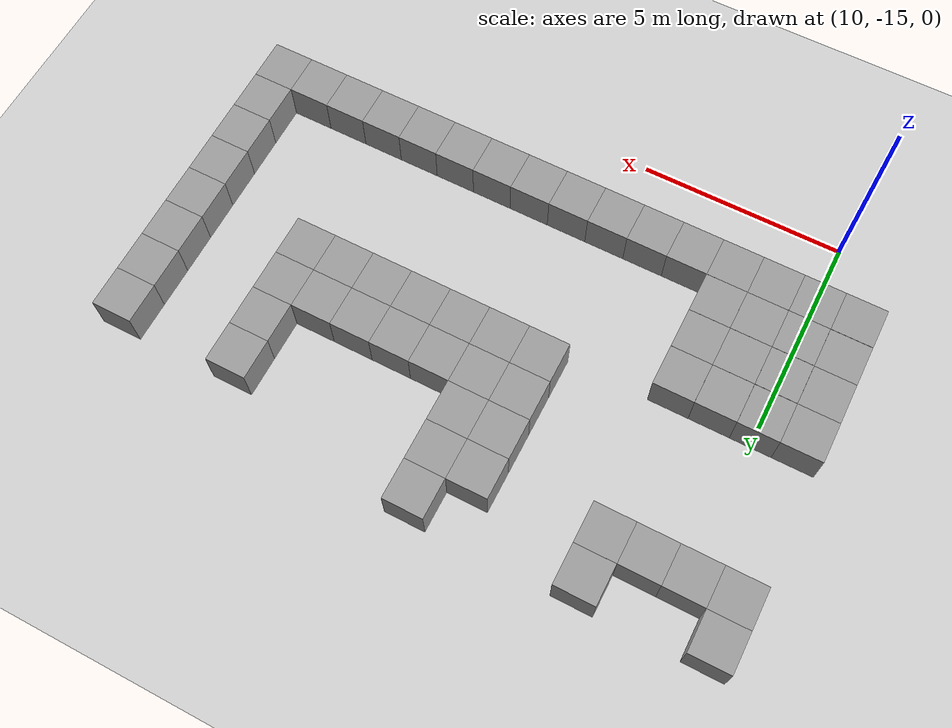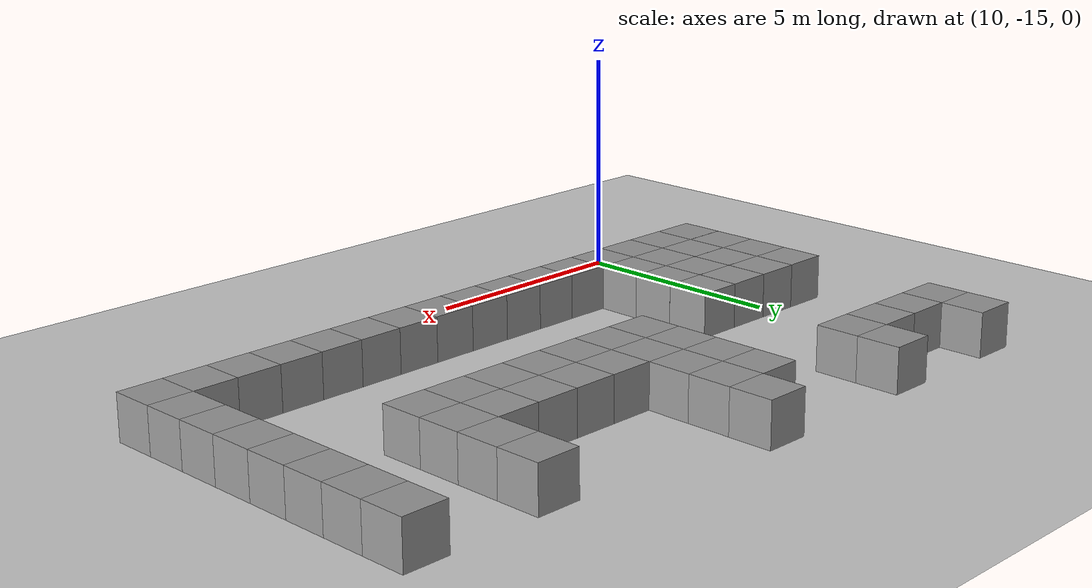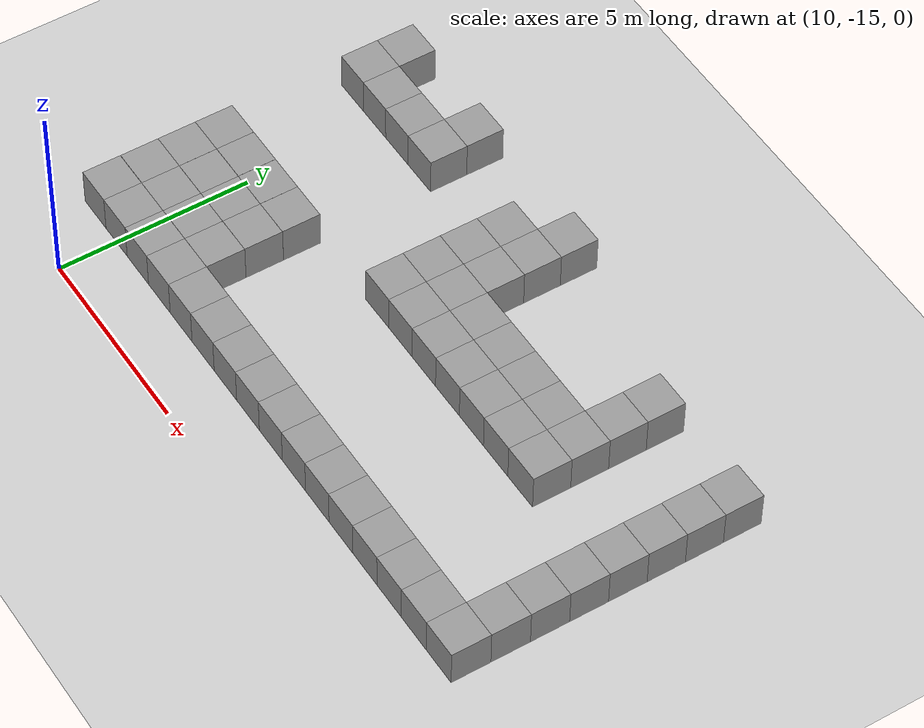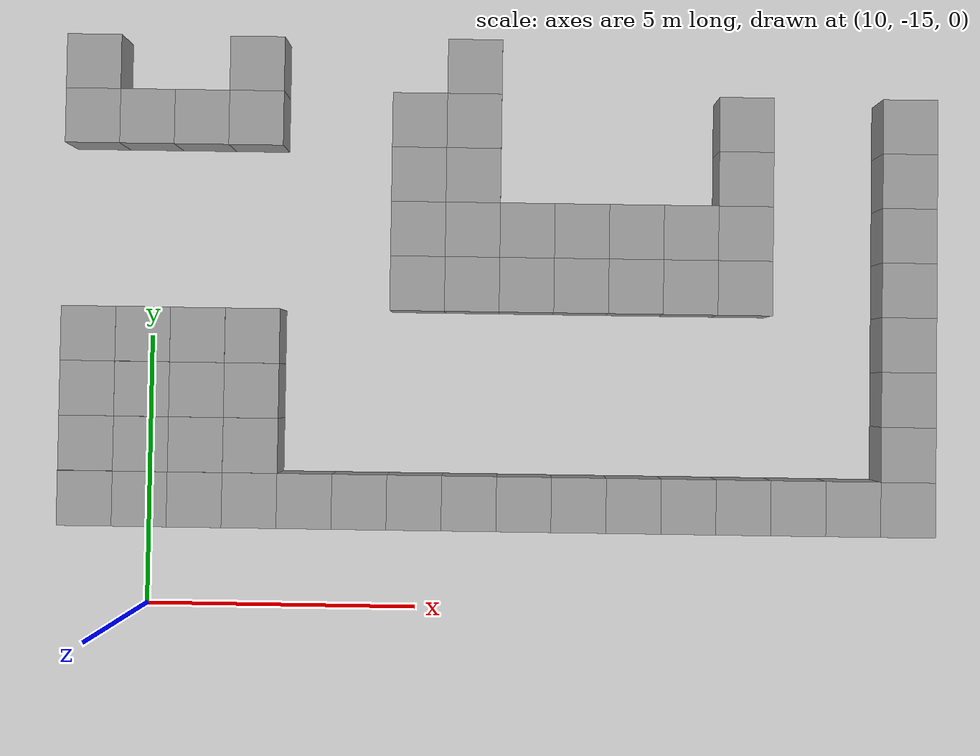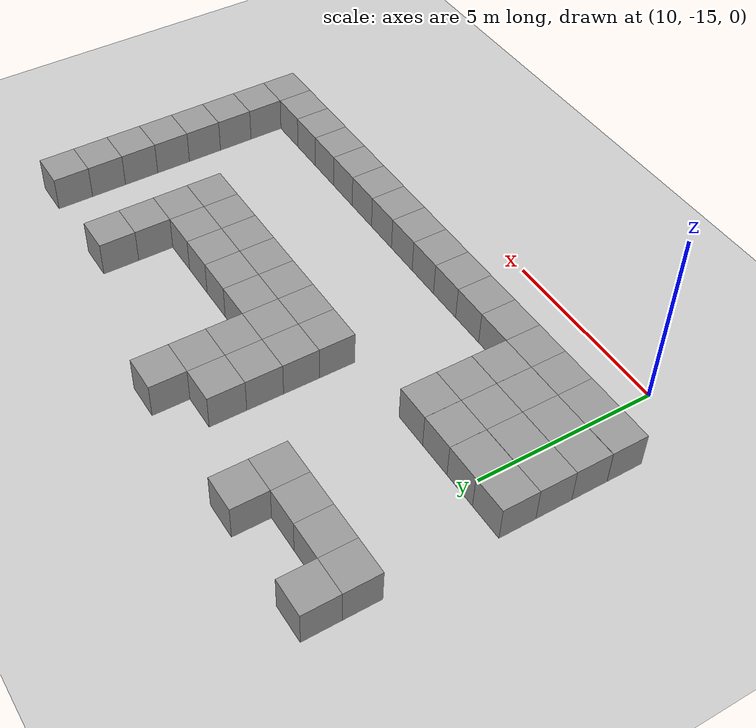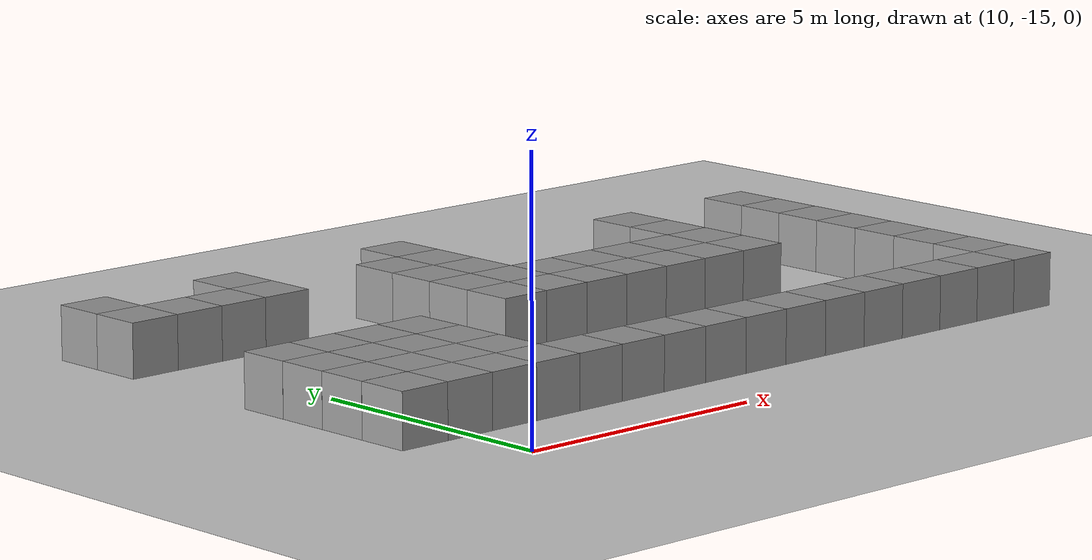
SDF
<sdf version="1.4">
 <world name="default">
  <model name="ground_plane">
   <static>true</static>
   <link name="link">
    <collision name="collision">
     <geometry><plane><normal>0 0 1</normal><size>100 100</size></plane></geometry>
     <surface><friction><ode><mu>100</mu><mu2>50</mu2></ode></friction></surface>
    </collision>
    <visual name="visual">
     <cast_shadows>0</cast_shadows>
     <geometry><plane><normal>0 0 1</normal><size>100 100</size></plane></geometry>
     <material>
      <script><uri>file://media/materials/scripts/gazebo.material</uri><name>Gazebo/Grey</name></script>
     </material>
    </visual>
    <velocity_decay><linear>0</linear><angular>0</angular></velocity_decay>
   </link>
  </model>
  <model name="unit_box_208">
   <pose>24 -6 0.5 0 0 -2e-06</pose>
   <static>true</static>
   <link name="link">
    <inertial>
     <mass>1</mass>
     <inertia><ixx>1</ixx><ixy>0</ixy><ixz>0</ixz><iyy>1</iyy><iyz>0</iyz><izz>1</izz></inertia>
    </inertial>
    <collision name="collision"><geometry><box><size>1 1 1</size></box></geometry></collision>
    <visual name="visual">
     <geometry><box><size>1 1 1</size></box></geometry>
     <material>
      <script><uri>file://media/materials/scripts/gazebo.material</uri><name>Gazebo/Grey</name></script>
     </material>
    </visual>
    <velocity_decay><linear>0</linear><angular>0</angular></velocity_decay>
   </link>
   <static>true</static>
  </model>
  <model name="unit_box_215">
   <pose>24 -7 0.5 0 0 -2e-06</pose>
   <static>true</static>
   <link name="link">
    <inertial>
     <mass>1</mass>
     <inertia><ixx>1</ixx><ixy>0</ixy><ixz>0</ixz><iyy>1</iyy><iyz>0</iyz><izz>1</izz></inertia>
    </inertial>
    <collision name="collision"><geometry><box><size>1 1 1</size></box></geometry></collision>
    <visual name="visual">
     <geometry><box><size>1 1 1</size></box></geometry>
     <material>
      <script><uri>file://media/materials/scripts/gazebo.material</uri><name>Gazebo/Grey</name></script>
     </material>
    </visual>
    <velocity_decay><linear>0</linear><angular>0</angular></velocity_decay>
   </link>
   <static>true</static>
  </model>
  <model name="unit_box_216">
   <pose>24 -8 0.5 0 0 -3e-06</pose>
   <static>true</static>
   <link name="link">
    <inertial>
     <mass>1</mass>
     <inertia><ixx>1</ixx><ixy>0</ixy><ixz>0</ixz><iyy>1</iyy><iyz>0</iyz><izz>1</izz></inertia>
    </inertial>
    <collision name="collision"><geometry><box><size>1 1 1</size></box></geometry></collision>
    <visual name="visual">
     <geometry><box><size>1 1 1</size></box></geometry>
     <material>
      <script><uri>file://media/materials/scripts/gazebo.material</uri><name>Gazebo/Grey</name></script>
     </material>
    </visual>
    <velocity_decay><linear>0</linear><angular>0</angular></velocity_decay>
   </link>
   <static>true</static>
  </model>
  <model name="unit_box_264">
   <pose>9 -13 0.5 0 0 -1.1e-05</pose>
   <static>true</static>
   <link name="link">
    <inertial>
     <mass>1</mass>
     <inertia><ixx>1</ixx><ixy>0</ixy><ixz>0</ixz><iyy>1</iyy><iyz>0</iyz><izz>1</izz></inertia>
    </inertial>
    <collision name="collision"><geometry><box><size>1 1 1</size></box></geometry></collision>
    <visual name="visual">
     <geometry><box><size>1 1 1</size></box></geometry>
     <material>
      <script><uri>file://media/materials/scripts/gazebo.material</uri><name>Gazebo/Grey</name></script>
     </material>
    </visual>
    <velocity_decay><linear>0</linear><angular>0</angular></velocity_decay>
   </link>
   <static>true</static>
  </model>
  <model name="unit_box_265">
   <pose>10 -13 0.500001 2e-06 -0 -1.1e-05</pose>
   <static>true</static>
   <link name="link">
    <inertial>
     <mass>1</mass>
     <inertia><ixx>1</ixx><ixy>0</ixy><ixz>0</ixz><iyy>1</iyy><iyz>0</iyz><izz>1</izz></inertia>
    </inertial>
    <collision name="collision"><geometry><box><size>1 1 1</size></box></geometry></collision>
    <visual name="visual">
     <geometry><box><size>1 1 1</size></box></geometry>
     <material>
      <script><uri>file://media/materials/scripts/gazebo.material</uri><name>Gazebo/Grey</name></script>
     </material>
    </visual>
    <velocity_decay><linear>0</linear><angular>0</angular></velocity_decay>
   </link>
   <static>true</static>
  </model>
  <model name="unit_box_266">
   <pose>11 -13 0.499992 1e-06 3.23117e-27 -8e-06</pose>
   <static>true</static>
   <link name="link">
    <inertial>
     <mass>1</mass>
     <inertia><ixx>1</ixx><ixy>0</ixy><ixz>0</ixz><iyy>1</iyy><iyz>0</iyz><izz>1</izz></inertia>
    </inertial>
    <collision name="collision"><geometry><box><size>1 1 1</size></box></geometry></collision>
    <visual name="visual">
     <geometry><box><size>1 1 1</size></box></geometry>
     <material>
      <script><uri>file://media/materials/scripts/gazebo.material</uri><name>Gazebo/Grey</name></script>
     </material>
    </visual>
    <velocity_decay><linear>0</linear><angular>0</angular></velocity_decay>
   </link>
   <static>true</static>
  </model>
  <model name="unit_box_267">
   <pose>12 -13 0.5 0 0 -8e-06</pose>
   <static>true</static>
   <link name="link">
    <inertial>
     <mass>1</mass>
     <inertia><ixx>1</ixx><ixy>0</ixy><ixz>0</ixz><iyy>1</iyy><iyz>0</iyz><izz>1</izz></inertia>
    </inertial>
    <collision name="collision"><geometry><box><size>1 1 1</size></box></geometry></collision>
    <visual name="visual">
     <geometry><box><size>1 1 1</size></box></geometry>
     <material>
      <script><uri>file://media/materials/scripts/gazebo.material</uri><name>Gazebo/Grey</name></script>
     </material>
    </visual>
    <velocity_decay><linear>0</linear><angular>0</angular></velocity_decay>
   </link>
   <static>true</static>
  </model>
  <model name="unit_box_268">
   <pose>13 -13 0.500001 1e-06 8.07794e-28 -7e-06</pose>
   <static>true</static>
   <link name="link">
    <inertial>
     <mass>1</mass>
     <inertia><ixx>1</ixx><ixy>0</ixy><ixz>0</ixz><iyy>1</iyy><iyz>0</iyz><izz>1</izz></inertia>
    </inertial>
    <collision name="collision"><geometry><box><size>1 1 1</size></box></geometry></collision>
    <visual name="visual">
     <geometry><box><size>1 1 1</size></box></geometry>
     <material>
      <script><uri>file://media/materials/scripts/gazebo.material</uri><name>Gazebo/Grey</name></script>
     </material>
    </visual>
    <velocity_decay><linear>0</linear><angular>0</angular></velocity_decay>
   </link>
   <static>true</static>
  </model>
  <model name="unit_box_269">
   <pose>14 -13 0.5 0 0 -1e-05</pose>
   <static>true</static>
   <link name="link">
    <inertial>
     <mass>1</mass>
     <inertia><ixx>1</ixx><ixy>0</ixy><ixz>0</ixz><iyy>1</iyy><iyz>0</iyz><izz>1</izz></inertia>
    </inertial>
    <collision name="collision"><geometry><box><size>1 1 1</size></box></geometry></collision>
    <visual name="visual">
     <geometry><box><size>1 1 1</size></box></geometry>
     <material>
      <script><uri>file://media/materials/scripts/gazebo.material</uri><name>Gazebo/Grey</name></script>
     </material>
    </visual>
    <velocity_decay><linear>0</linear><angular>0</angular></velocity_decay>
   </link>
   <static>true</static>
  </model>
  <model name="unit_box_274">
   <pose>24 -9 0.5 0 0 -6e-06</pose>
   <static>true</static>
   <link name="link">
    <inertial>
     <mass>1</mass>
     <inertia><ixx>1</ixx><ixy>0</ixy><ixz>0</ixz><iyy>1</iyy><iyz>0</iyz><izz>1</izz></inertia>
    </inertial>
    <collision name="collision"><geometry><box><size>1 1 1</size></box></geometry></collision>
    <visual name="visual">
     <geometry><box><size>1 1 1</size></box></geometry>
     <material>
      <script><uri>file://media/materials/scripts/gazebo.material</uri><name>Gazebo/Grey</name></script>
     </material>
    </visual>
    <velocity_decay><linear>0</linear><angular>0</angular></velocity_decay>
   </link>
   <static>true</static>
  </model>
  <model name="unit_box_275">
   <pose>24 -10 0.5 0 0 -6e-06</pose>
   <static>true</static>
   <link name="link">
    <inertial>
     <mass>1</mass>
     <inertia><ixx>1</ixx><ixy>0</ixy><ixz>0</ixz><iyy>1</iyy><iyz>0</iyz><izz>1</izz></inertia>
    </inertial>
    <collision name="collision"><geometry><box><size>1 1 1</size></box></geometry></collision>
    <visual name="visual">
     <geometry><box><size>1 1 1</size></box></geometry>
     <material>
      <script><uri>file://media/materials/scripts/gazebo.material</uri><name>Gazebo/Grey</name></script>
     </material>
    </visual>
    <velocity_decay><linear>0</linear><angular>0</angular></velocity_decay>
   </link>
   <static>true</static>
  </model>
  <model name="unit_box_276">
   <pose>24 -11 0.5 0 0 -4e-06</pose>
   <static>true</static>
   <link name="link">
    <inertial>
     <mass>1</mass>
     <inertia><ixx>1</ixx><ixy>0</ixy><ixz>0</ixz><iyy>1</iyy><iyz>0</iyz><izz>1</izz></inertia>
    </inertial>
    <collision name="collision"><geometry><box><size>1 1 1</size></box></geometry></collision>
    <visual name="visual">
     <geometry><box><size>1 1 1</size></box></geometry>
     <material>
      <script><uri>file://media/materials/scripts/gazebo.material</uri><name>Gazebo/Grey</name></script>
     </material>
    </visual>
    <velocity_decay><linear>0</linear><angular>0</angular></velocity_decay>
   </link>
   <static>true</static>
  </model>
  <model name="unit_box_277">
   <pose>24 -12 0.5 0 0 -4e-06</pose>
   <static>true</static>
   <link name="link">
    <inertial>
     <mass>1</mass>
     <inertia><ixx>1</ixx><ixy>0</ixy><ixz>0</ixz><iyy>1</iyy><iyz>0</iyz><izz>1</izz></inertia>
    </inertial>
    <collision name="collision"><geometry><box><size>1 1 1</size></box></geometry></collision>
    <visual name="visual">
     <geometry><box><size>1 1 1</size></box></geometry>
     <material>
      <script><uri>file://media/materials/scripts/gazebo.material</uri><name>Gazebo/Grey</name></script>
     </material>
    </visual>
    <velocity_decay><linear>0</linear><angular>0</angular></velocity_decay>
   </link>
   <static>true</static>
  </model>
  <model name="unit_box_278">
   <pose>15 -13 0.499998 -1e-06 5e-06 -1e-05</pose>
   <static>true</static>
   <link name="link">
    <inertial>
     <mass>1</mass>
     <inertia><ixx>1</ixx><ixy>0</ixy><ixz>0</ixz><iyy>1</iyy><iyz>0</iyz><izz>1</izz></inertia>
    </inertial>
    <collision name="collision"><geometry><box><size>1 1 1</size></box></geometry></collision>
    <visual name="visual">
     <geometry><box><size>1 1 1</size></box></geometry>
     <material>
      <script><uri>file://media/materials/scripts/gazebo.material</uri><name>Gazebo/Grey</name></script>
     </material>
    </visual>
    <velocity_decay><linear>0</linear><angular>0</angular></velocity_decay>
   </link>
   <static>true</static>
  </model>
  <model name="unit_box_279">
   <pose>16 -13 0.49999 0 0 -1e-05</pose>
   <static>true</static>
   <link name="link">
    <inertial>
     <mass>1</mass>
     <inertia><ixx>1</ixx><ixy>0</ixy><ixz>0</ixz><iyy>1</iyy><iyz>0</iyz><izz>1</izz></inertia>
    </inertial>
    <collision name="collision"><geometry><box><size>1 1 1</size></box></geometry></collision>
    <visual name="visual">
     <geometry><box><size>1 1 1</size></box></geometry>
     <material>
      <script><uri>file://media/materials/scripts/gazebo.material</uri><name>Gazebo/Grey</name></script>
     </material>
    </visual>
    <velocity_decay><linear>0</linear><angular>0</angular></velocity_decay>
   </link>
   <static>true</static>
  </model>
  <model name="unit_box_280">
   <pose>17 -13 0.5 -1e-06 1.61559e-27 -1.1e-05</pose>
   <static>true</static>
   <link name="link">
    <inertial>
     <mass>1</mass>
     <inertia><ixx>1</ixx><ixy>0</ixy><ixz>0</ixz><iyy>1</iyy><iyz>0</iyz><izz>1</izz></inertia>
    </inertial>
    <collision name="collision"><geometry><box><size>1 1 1</size></box></geometry></collision>
    <visual name="visual">
     <geometry><box><size>1 1 1</size></box></geometry>
     <material>
      <script><uri>file://media/materials/scripts/gazebo.material</uri><name>Gazebo/Grey</name></script>
     </material>
    </visual>
    <velocity_decay><linear>0</linear><angular>0</angular></velocity_decay>
   </link>
   <static>true</static>
  </model>
  <model name="unit_box_281">
   <pose>18 -13 0.5 0 0 -1.1e-05</pose>
   <static>true</static>
   <link name="link">
    <inertial>
     <mass>1</mass>
     <inertia><ixx>1</ixx><ixy>0</ixy><ixz>0</ixz><iyy>1</iyy><iyz>0</iyz><izz>1</izz></inertia>
    </inertial>
    <collision name="collision"><geometry><box><size>1 1 1</size></box></geometry></collision>
    <visual name="visual">
     <geometry><box><size>1 1 1</size></box></geometry>
     <material>
      <script><uri>file://media/materials/scripts/gazebo.material</uri><name>Gazebo/Grey</name></script>
     </material>
    </visual>
    <velocity_decay><linear>0</linear><angular>0</angular></velocity_decay>
   </link>
   <static>true</static>
  </model>
  <model name="unit_box_282">
   <pose>19 -13 0.5 0 0 -9e-06</pose>
   <static>true</static>
   <link name="link">
    <inertial>
     <mass>1</mass>
     <inertia><ixx>1</ixx><ixy>0</ixy><ixz>0</ixz><iyy>1</iyy><iyz>0</iyz><izz>1</izz></inertia>
    </inertial>
    <collision name="collision"><geometry><box><size>1 1 1</size></box></geometry></collision>
    <visual name="visual">
     <geometry><box><size>1 1 1</size></box></geometry>
     <material>
      <script><uri>file://media/materials/scripts/gazebo.material</uri><name>Gazebo/Grey</name></script>
     </material>
    </visual>
    <velocity_decay><linear>0</linear><angular>0</angular></velocity_decay>
   </link>
   <static>true</static>
  </model>
  <model name="unit_box_283">
   <pose>20 -13 0.5 0 0 -9e-06</pose>
   <static>true</static>
   <link name="link">
    <inertial>
     <mass>1</mass>
     <inertia><ixx>1</ixx><ixy>0</ixy><ixz>0</ixz><iyy>1</iyy><iyz>0</iyz><izz>1</izz></inertia>
    </inertial>
    <collision name="collision"><geometry><box><size>1 1 1</size></box></geometry></collision>
    <visual name="visual">
     <geometry><box><size>1 1 1</size></box></geometry>
     <material>
      <script><uri>file://media/materials/scripts/gazebo.material</uri><name>Gazebo/Grey</name></script>
     </material>
    </visual>
    <velocity_decay><linear>0</linear><angular>0</angular></velocity_decay>
   </link>
   <static>true</static>
  </model>
  <model name="unit_box_284">
   <pose>21 -13 0.5 0 0 -6e-06</pose>
   <static>true</static>
   <link name="link">
    <inertial>
     <mass>1</mass>
     <inertia><ixx>1</ixx><ixy>0</ixy><ixz>0</ixz><iyy>1</iyy><iyz>0</iyz><izz>1</izz></inertia>
    </inertial>
    <collision name="collision"><geometry><box><size>1 1 1</size></box></geometry></collision>
    <visual name="visual">
     <geometry><box><size>1 1 1</size></box></geometry>
     <material>
      <script><uri>file://media/materials/scripts/gazebo.material</uri><name>Gazebo/Grey</name></script>
     </material>
    </visual>
    <velocity_decay><linear>0</linear><angular>0</angular></velocity_decay>
   </link>
   <static>true</static>
  </model>
  <model name="unit_box_285">
   <pose>22 -13 0.5 1e-06 -0 -6e-06</pose>
   <static>true</static>
   <link name="link">
    <inertial>
     <mass>1</mass>
     <inertia><ixx>1</ixx><ixy>0</ixy><ixz>0</ixz><iyy>1</iyy><iyz>0</iyz><izz>1</izz></inertia>
    </inertial>
    <collision name="collision"><geometry><box><size>1 1 1</size></box></geometry></collision>
    <visual name="visual">
     <geometry><box><size>1 1 1</size></box></geometry>
     <material>
      <script><uri>file://media/materials/scripts/gazebo.material</uri><name>Gazebo/Grey</name></script>
     </material>
    </visual>
    <velocity_decay><linear>0</linear><angular>0</angular></velocity_decay>
   </link>
   <static>true</static>
  </model>
  <model name="unit_box_286">
   <pose>23 -13 0.5 0 0 -6e-06</pose>
   <static>true</static>
   <link name="link">
    <inertial>
     <mass>1</mass>
     <inertia><ixx>1</ixx><ixy>0</ixy><ixz>0</ixz><iyy>1</iyy><iyz>0</iyz><izz>1</izz></inertia>
    </inertial>
    <collision name="collision"><geometry><box><size>1 1 1</size></box></geometry></collision>
    <visual name="visual">
     <geometry><box><size>1 1 1</size></box></geometry>
     <material>
      <script><uri>file://media/materials/scripts/gazebo.material</uri><name>Gazebo/Grey</name></script>
     </material>
    </visual>
    <velocity_decay><linear>0</linear><angular>0</angular></velocity_decay>
   </link>
   <static>true</static>
  </model>
  <model name="unit_box_287">
   <pose>24 -13 0.5 0 0 -5e-06</pose>
   <static>true</static>
   <link name="link">
    <inertial>
     <mass>1</mass>
     <inertia><ixx>1</ixx><ixy>0</ixy><ixz>0</ixz><iyy>1</iyy><iyz>0</iyz><izz>1</izz></inertia>
    </inertial>
    <collision name="collision"><geometry><box><size>1 1 1</size></box></geometry></collision>
    <visual name="visual">
     <geometry><box><size>1 1 1</size></box></geometry>
     <material>
      <script><uri>file://media/materials/scripts/gazebo.material</uri><name>Gazebo/Grey</name></script>
     </material>
    </visual>
    <velocity_decay><linear>0</linear><angular>0</angular></velocity_decay>
   </link>
   <static>true</static>
  </model>
  <model name="unit_box_40_0">
   <pose>9.00203 -11.9957 0.5 0 0 -0.000187</pose>
   <link name="link">
    <inertial>
     <mass>1</mass>
     <inertia><ixx>1</ixx><ixy>0</ixy><ixz>0</ixz><iyy>1</iyy><iyz>0</iyz><izz>1</izz></inertia>
    </inertial>
    <collision name="collision"><geometry><box><size>1 1 1</size></box></geometry></collision>
    <visual name="visual">
     <geometry><box><size>1 1 1</size></box></geometry>
     <material>
      <script><uri>file://media/materials/scripts/gazebo.material</uri><name>Gazebo/Grey</name></script>
     </material>
    </visual>
    <velocity_decay><linear>0</linear><angular>0</angular></velocity_decay>
   </link>
   <static>true</static>
  </model>
  <model name="unit_box_41_0">
   <pose>10.0022 -11.9997 0.5 0 -0 -0.000119</pose>
   <link name="link">
    <inertial>
     <mass>1</mass>
     <inertia><ixx>1</ixx><ixy>0</ixy><ixz>0</ixz><iyy>1</iyy><iyz>0</iyz><izz>1</izz></inertia>
    </inertial>
    <collision name="collision"><geometry><box><size>1 1 1</size></box></geometry></collision>
    <visual name="visual">
     <geometry><box><size>1 1 1</size></box></geometry>
     <material>
      <script><uri>file://media/materials/scripts/gazebo.material</uri><name>Gazebo/Grey</name></script>
     </material>
    </visual>
    <velocity_decay><linear>0</linear><angular>0</angular></velocity_decay>
   </link>
   <static>true</static>
  </model>
  <model name="unit_box_42_0">
   <pose>11.0022 -11.9991 0.5 -0 -0 -0.000157</pose>
   <link name="link">
    <inertial>
     <mass>1</mass>
     <inertia><ixx>1</ixx><ixy>0</ixy><ixz>0</ixz><iyy>1</iyy><iyz>0</iyz><izz>1</izz></inertia>
    </inertial>
    <collision name="collision"><geometry><box><size>1 1 1</size></box></geometry></collision>
    <visual name="visual">
     <geometry><box><size>1 1 1</size></box></geometry>
     <material>
      <script><uri>file://media/materials/scripts/gazebo.material</uri><name>Gazebo/Grey</name></script>
     </material>
    </visual>
    <velocity_decay><linear>0</linear><angular>0</angular></velocity_decay>
   </link>
   <static>true</static>
  </model>
  <model name="unit_box_43_0">
   <pose>12.0026 -11.9996 0.5 0 0 -0.000202</pose>
   <link name="link">
    <inertial>
     <mass>1</mass>
     <inertia><ixx>1</ixx><ixy>0</ixy><ixz>0</ixz><iyy>1</iyy><iyz>0</iyz><izz>1</izz></inertia>
    </inertial>
    <collision name="collision"><geometry><box><size>1 1 1</size></box></geometry></collision>
    <visual name="visual">
     <geometry><box><size>1 1 1</size></box></geometry>
     <material>
      <script><uri>file://media/materials/scripts/gazebo.material</uri><name>Gazebo/Grey</name></script>
     </material>
    </visual>
    <velocity_decay><linear>0</linear><angular>0</angular></velocity_decay>
   </link>
   <static>true</static>
  </model>
  <model name="unit_box_135_0">
   <pose>12.0022 -10.999 0.5 0 0 -3.1e-05</pose>
   <link name="link">
    <inertial>
     <mass>1</mass>
     <inertia><ixx>1</ixx><ixy>0</ixy><ixz>0</ixz><iyy>1</iyy><iyz>0</iyz><izz>1</izz></inertia>
    </inertial>
    <collision name="collision"><geometry><box><size>1 1 1</size></box></geometry></collision>
    <visual name="visual">
     <geometry><box><size>1 1 1</size></box></geometry>
     <material>
      <script><uri>file://media/materials/scripts/gazebo.material</uri><name>Gazebo/Grey</name></script>
     </material>
    </visual>
    <velocity_decay><linear>0</linear><angular>0</angular></velocity_decay>
   </link>
   <static>true</static>
  </model>
  <model name="unit_box_136_0">
   <pose>12.002 -9.99866 0.5 0 -0 0.000239</pose>
   <link name="link">
    <inertial>
     <mass>1</mass>
     <inertia><ixx>1</ixx><ixy>0</ixy><ixz>0</ixz><iyy>1</iyy><iyz>0</iyz><izz>1</izz></inertia>
    </inertial>
    <collision name="collision"><geometry><box><size>1 1 1</size></box></geometry></collision>
    <visual name="visual">
     <geometry><box><size>1 1 1</size></box></geometry>
     <material>
      <script><uri>file://media/materials/scripts/gazebo.material</uri><name>Gazebo/Grey</name></script>
     </material>
    </visual>
    <velocity_decay><linear>0</linear><angular>0</angular></velocity_decay>
   </link>
   <static>true</static>
  </model>
  <model name="unit_box_137_0">
   <pose>11.0009 -9.99839 0.5 0 0 -0.000186</pose>
   <link name="link">
    <inertial>
     <mass>1</mass>
     <inertia><ixx>1</ixx><ixy>0</ixy><ixz>0</ixz><iyy>1</iyy><iyz>0</iyz><izz>1</izz></inertia>
    </inertial>
    <collision name="collision"><geometry><box><size>1 1 1</size></box></geometry></collision>
    <visual name="visual">
     <geometry><box><size>1 1 1</size></box></geometry>
     <material>
      <script><uri>file://media/materials/scripts/gazebo.material</uri><name>Gazebo/Grey</name></script>
     </material>
    </visual>
    <velocity_decay><linear>0</linear><angular>0</angular></velocity_decay>
   </link>
   <static>true</static>
  </model>
  <model name="unit_box_138_0">
   <pose>10.0004 -9.99582 0.5 -0 -0 -0.000845</pose>
   <link name="link">
    <inertial>
     <mass>1</mass>
     <inertia><ixx>1</ixx><ixy>0</ixy><ixz>0</ixz><iyy>1</iyy><iyz>0</iyz><izz>1</izz></inertia>
    </inertial>
    <collision name="collision"><geometry><box><size>1 1 1</size></box></geometry></collision>
    <visual name="visual">
     <geometry><box><size>1 1 1</size></box></geometry>
     <material>
      <script><uri>file://media/materials/scripts/gazebo.material</uri><name>Gazebo/Grey</name></script>
     </material>
    </visual>
    <velocity_decay><linear>0</linear><angular>0</angular></velocity_decay>
   </link>
   <static>true</static>
  </model>
  <model name="unit_box_139_0">
   <pose>8.99996 -9.99562 0.5 -0 -0 -0.000179</pose>
   <link name="link">
    <inertial>
     <mass>1</mass>
     <inertia><ixx>1</ixx><ixy>0</ixy><ixz>0</ixz><iyy>1</iyy><iyz>0</iyz><izz>1</izz></inertia>
    </inertial>
    <collision name="collision"><geometry><box><size>1 1 1</size></box></geometry></collision>
    <visual name="visual">
     <geometry><box><size>1 1 1</size></box></geometry>
     <material>
      <script><uri>file://media/materials/scripts/gazebo.material</uri><name>Gazebo/Grey</name></script>
     </material>
    </visual>
    <velocity_decay><linear>0</linear><angular>0</angular></velocity_decay>
   </link>
   <static>true</static>
  </model>
  <model name="unit_box_143_0">
   <pose>11.0022 -10.9987 0.5 0 -0 4.4e-05</pose>
   <link name="link">
    <inertial>
     <mass>1</mass>
     <inertia><ixx>1</ixx><ixy>0</ixy><ixz>0</ixz><iyy>1</iyy><iyz>0</iyz><izz>1</izz></inertia>
    </inertial>
    <collision name="collision"><geometry><box><size>1 1 1</size></box></geometry></collision>
    <visual name="visual">
     <geometry><box><size>1 1 1</size></box></geometry>
     <material>
      <script><uri>file://media/materials/scripts/gazebo.material</uri><name>Gazebo/Grey</name></script>
     </material>
    </visual>
    <velocity_decay><linear>0</linear><angular>0</angular></velocity_decay>
   </link>
   <static>true</static>
  </model>
  <model name="unit_box_144_0">
   <pose>10.0021 -10.9984 0.5 0 -0 8.2e-05</pose>
   <link name="link">
    <inertial>
     <mass>1</mass>
     <inertia><ixx>1</ixx><ixy>0</ixy><ixz>0</ixz><iyy>1</iyy><iyz>0</iyz><izz>1</izz></inertia>
    </inertial>
    <collision name="collision"><geometry><box><size>1 1 1</size></box></geometry></collision>
    <visual name="visual">
     <geometry><box><size>1 1 1</size></box></geometry>
     <material>
      <script><uri>file://media/materials/scripts/gazebo.material</uri><name>Gazebo/Grey</name></script>
     </material>
    </visual>
    <velocity_decay><linear>0</linear><angular>0</angular></velocity_decay>
   </link>
   <static>true</static>
  </model>
  <model name="unit_box_145_0">
   <pose>9.00137 -10.9957 0.5 0 0 -0.000102</pose>
   <link name="link">
    <inertial>
     <mass>1</mass>
     <inertia><ixx>1</ixx><ixy>0</ixy><ixz>0</ixz><iyy>1</iyy><iyz>0</iyz><izz>1</izz></inertia>
    </inertial>
    <collision name="collision"><geometry><box><size>1 1 1</size></box></geometry></collision>
    <visual name="visual">
     <geometry><box><size>1 1 1</size></box></geometry>
     <material>
      <script><uri>file://media/materials/scripts/gazebo.material</uri><name>Gazebo/Grey</name></script>
     </material>
    </visual>
    <velocity_decay><linear>0</linear><angular>0</angular></velocity_decay>
   </link>
   <static>true</static>
  </model>
  <model name="unit_box_163_0">
   <pose>10 -6 0.5 0 -0 8e-06</pose>
   <link name="link">
    <inertial>
     <mass>1</mass>
     <inertia><ixx>1</ixx><ixy>0</ixy><ixz>0</ixz><iyy>1</iyy><iyz>0</iyz><izz>1</izz></inertia>
    </inertial>
    <collision name="collision"><geometry><box><size>1 1 1</size></box></geometry></collision>
    <visual name="visual">
     <geometry><box><size>1 1 1</size></box></geometry>
     <material>
      <script><uri>file://media/materials/scripts/gazebo.material</uri><name>Gazebo/Grey</name></script>
     </material>
    </visual>
    <velocity_decay><linear>0</linear><angular>0</angular></velocity_decay>
   </link>
   <static>true</static>
  </model>
  <model name="unit_box_164_0">
   <pose>11 -6 0.5 0 -0 6e-06</pose>
   <link name="link">
    <inertial>
     <mass>1</mass>
     <inertia><ixx>1</ixx><ixy>0</ixy><ixz>0</ixz><iyy>1</iyy><iyz>0</iyz><izz>1</izz></inertia>
    </inertial>
    <collision name="collision"><geometry><box><size>1 1 1</size></box></geometry></collision>
    <visual name="visual">
     <geometry><box><size>1 1 1</size></box></geometry>
     <material>
      <script><uri>file://media/materials/scripts/gazebo.material</uri><name>Gazebo/Grey</name></script>
     </material>
    </visual>
    <velocity_decay><linear>0</linear><angular>0</angular></velocity_decay>
   </link>
   <static>true</static>
  </model>
  <model name="unit_box_165_0">
   <pose>12 -6.00001 0.5 0 -0 4e-06</pose>
   <link name="link">
    <inertial>
     <mass>1</mass>
     <inertia><ixx>1</ixx><ixy>0</ixy><ixz>0</ixz><iyy>1</iyy><iyz>0</iyz><izz>1</izz></inertia>
    </inertial>
    <collision name="collision"><geometry><box><size>1 1 1</size></box></geometry></collision>
    <visual name="visual">
     <geometry><box><size>1 1 1</size></box></geometry>
     <material>
      <script><uri>file://media/materials/scripts/gazebo.material</uri><name>Gazebo/Grey</name></script>
     </material>
    </visual>
    <velocity_decay><linear>0</linear><angular>0</angular></velocity_decay>
   </link>
   <static>true</static>
  </model>
  <model name="unit_box_166_0">
   <pose>12 -5 0.5 0 -0 2e-06</pose>
   <link name="link">
    <inertial>
     <mass>1</mass>
     <inertia><ixx>1</ixx><ixy>0</ixy><ixz>0</ixz><iyy>1</iyy><iyz>0</iyz><izz>1</izz></inertia>
    </inertial>
    <collision name="collision"><geometry><box><size>1 1 1</size></box></geometry></collision>
    <visual name="visual">
     <geometry><box><size>1 1 1</size></box></geometry>
     <material>
      <script><uri>file://media/materials/scripts/gazebo.material</uri><name>Gazebo/Grey</name></script>
     </material>
    </visual>
    <velocity_decay><linear>0</linear><angular>0</angular></velocity_decay>
   </link>
   <static>true</static>
  </model>
  <model name="unit_box_170_0">
   <pose>9 -6 0.5 0 -0 3e-06</pose>
   <link name="link">
    <inertial>
     <mass>1</mass>
     <inertia><ixx>1</ixx><ixy>0</ixy><ixz>0</ixz><iyy>1</iyy><iyz>0</iyz><izz>1</izz></inertia>
    </inertial>
    <collision name="collision"><geometry><box><size>1 1 1</size></box></geometry></collision>
    <visual name="visual">
     <geometry><box><size>1 1 1</size></box></geometry>
     <material>
      <script><uri>file://media/materials/scripts/gazebo.material</uri><name>Gazebo/Grey</name></script>
     </material>
    </visual>
    <velocity_decay><linear>0</linear><angular>0</angular></velocity_decay>
   </link>
   <static>true</static>
  </model>
  <model name="unit_box_171_0">
   <pose>9 -5 0.5 0 -0 2e-06</pose>
   <link name="link">
    <inertial>
     <mass>1</mass>
     <inertia><ixx>1</ixx><ixy>0</ixy><ixz>0</ixz><iyy>1</iyy><iyz>0</iyz><izz>1</izz></inertia>
    </inertial>
    <collision name="collision"><geometry><box><size>1 1 1</size></box></geometry></collision>
    <visual name="visual">
     <geometry><box><size>1 1 1</size></box></geometry>
     <material>
      <script><uri>file://media/materials/scripts/gazebo.material</uri><name>Gazebo/Grey</name></script>
     </material>
    </visual>
    <velocity_decay><linear>0</linear><angular>0</angular></velocity_decay>
   </link>
   <static>true</static>
  </model>
  <model name="unit_box_180_0">
   <pose>15 -5.99999 0.5 0 -0 -5e-06</pose>
   <link name="link">
    <inertial>
     <mass>1</mass>
     <inertia><ixx>1</ixx><ixy>0</ixy><ixz>0</ixz><iyy>1</iyy><iyz>0</iyz><izz>1</izz></inertia>
    </inertial>
    <collision name="collision"><geometry><box><size>1 1 1</size></box></geometry></collision>
    <visual name="visual">
     <geometry><box><size>1 1 1</size></box></geometry>
     <material>
      <script><uri>file://media/materials/scripts/gazebo.material</uri><name>Gazebo/Grey</name></script>
     </material>
    </visual>
    <velocity_decay><linear>0</linear><angular>0</angular></velocity_decay>
   </link>
   <static>true</static>
  </model>
  <model name="unit_box_181_0">
   <pose>15 -7 0.5 0 0 -4e-06</pose>
   <link name="link">
    <inertial>
     <mass>1</mass>
     <inertia><ixx>1</ixx><ixy>0</ixy><ixz>0</ixz><iyy>1</iyy><iyz>0</iyz><izz>1</izz></inertia>
    </inertial>
    <collision name="collision"><geometry><box><size>1 1 1</size></box></geometry></collision>
    <visual name="visual">
     <geometry><box><size>1 1 1</size></box></geometry>
     <material>
      <script><uri>file://media/materials/scripts/gazebo.material</uri><name>Gazebo/Grey</name></script>
     </material>
    </visual>
    <velocity_decay><linear>0</linear><angular>0</angular></velocity_decay>
   </link>
   <static>true</static>
  </model>
  <model name="unit_box_182_0">
   <pose>15 -8.00001 0.5 0 -0 2e-06</pose>
   <link name="link">
    <inertial>
     <mass>1</mass>
     <inertia><ixx>1</ixx><ixy>0</ixy><ixz>0</ixz><iyy>1</iyy><iyz>0</iyz><izz>1</izz></inertia>
    </inertial>
    <collision name="collision"><geometry><box><size>1 1 1</size></box></geometry></collision>
    <visual name="visual">
     <geometry><box><size>1 1 1</size></box></geometry>
     <material>
      <script><uri>file://media/materials/scripts/gazebo.material</uri><name>Gazebo/Grey</name></script>
     </material>
    </visual>
    <velocity_decay><linear>0</linear><angular>0</angular></velocity_decay>
   </link>
   <static>true</static>
  </model>
  <model name="unit_box_183_0">
   <pose>15 -9.00002 0.5 0 -0 4e-06</pose>
   <link name="link">
    <inertial>
     <mass>1</mass>
     <inertia><ixx>1</ixx><ixy>0</ixy><ixz>0</ixz><iyy>1</iyy><iyz>0</iyz><izz>1</izz></inertia>
    </inertial>
    <collision name="collision"><geometry><box><size>1 1 1</size></box></geometry></collision>
    <visual name="visual">
     <geometry><box><size>1 1 1</size></box></geometry>
     <material>
      <script><uri>file://media/materials/scripts/gazebo.material</uri><name>Gazebo/Grey</name></script>
     </material>
    </visual>
    <velocity_decay><linear>0</linear><angular>0</angular></velocity_decay>
   </link>
   <static>true</static>
  </model>
  <model name="unit_box_184_0">
   <pose>16 -9.00001 0.5 0 -0 2e-06</pose>
   <link name="link">
    <inertial>
     <mass>1</mass>
     <inertia><ixx>1</ixx><ixy>0</ixy><ixz>0</ixz><iyy>1</iyy><iyz>0</iyz><izz>1</izz></inertia>
    </inertial>
    <collision name="collision"><geometry><box><size>1 1 1</size></box></geometry></collision>
    <visual name="visual">
     <geometry><box><size>1 1 1</size></box></geometry>
     <material>
      <script><uri>file://media/materials/scripts/gazebo.material</uri><name>Gazebo/Grey</name></script>
     </material>
    </visual>
    <velocity_decay><linear>0</linear><angular>0</angular></velocity_decay>
   </link>
   <static>true</static>
  </model>
  <model name="unit_box_185_0">
   <pose>17 -9.00001 0.5 0 -0 1e-06</pose>
   <link name="link">
    <inertial>
     <mass>1</mass>
     <inertia><ixx>1</ixx><ixy>0</ixy><ixz>0</ixz><iyy>1</iyy><iyz>0</iyz><izz>1</izz></inertia>
    </inertial>
    <collision name="collision"><geometry><box><size>1 1 1</size></box></geometry></collision>
    <visual name="visual">
     <geometry><box><size>1 1 1</size></box></geometry>
     <material>
      <script><uri>file://media/materials/scripts/gazebo.material</uri><name>Gazebo/Grey</name></script>
     </material>
    </visual>
    <velocity_decay><linear>0</linear><angular>0</angular></velocity_decay>
   </link>
   <static>true</static>
  </model>
  <model name="unit_box_186_0">
   <pose>18 -9.00001 0.5 0 -0 0</pose>
   <link name="link">
    <inertial>
     <mass>1</mass>
     <inertia><ixx>1</ixx><ixy>0</ixy><ixz>0</ixz><iyy>1</iyy><iyz>0</iyz><izz>1</izz></inertia>
    </inertial>
    <collision name="collision"><geometry><box><size>1 1 1</size></box></geometry></collision>
    <visual name="visual">
     <geometry><box><size>1 1 1</size></box></geometry>
     <material>
      <script><uri>file://media/materials/scripts/gazebo.material</uri><name>Gazebo/Grey</name></script>
     </material>
    </visual>
    <velocity_decay><linear>0</linear><angular>0</angular></velocity_decay>
   </link>
   <static>true</static>
  </model>
  <model name="unit_box_187_0">
   <pose>19 -9.00001 0.5 0 -0 1e-06</pose>
   <link name="link">
    <inertial>
     <mass>1</mass>
     <inertia><ixx>1</ixx><ixy>0</ixy><ixz>0</ixz><iyy>1</iyy><iyz>0</iyz><izz>1</izz></inertia>
    </inertial>
    <collision name="collision"><geometry><box><size>1 1 1</size></box></geometry></collision>
    <visual name="visual">
     <geometry><box><size>1 1 1</size></box></geometry>
     <material>
      <script><uri>file://media/materials/scripts/gazebo.material</uri><name>Gazebo/Grey</name></script>
     </material>
    </visual>
    <velocity_decay><linear>0</linear><angular>0</angular></velocity_decay>
   </link>
   <static>true</static>
  </model>
  <model name="unit_box_188_0">
   <pose>20 -9 0.5 0 0 -2e-06</pose>
   <link name="link">
    <inertial>
     <mass>1</mass>
     <inertia><ixx>1</ixx><ixy>0</ixy><ixz>0</ixz><iyy>1</iyy><iyz>0</iyz><izz>1</izz></inertia>
    </inertial>
    <collision name="collision"><geometry><box><size>1 1 1</size></box></geometry></collision>
    <visual name="visual">
     <geometry><box><size>1 1 1</size></box></geometry>
     <material>
      <script><uri>file://media/materials/scripts/gazebo.material</uri><name>Gazebo/Grey</name></script>
     </material>
    </visual>
    <velocity_decay><linear>0</linear><angular>0</angular></velocity_decay>
   </link>
   <static>true</static>
  </model>
  <model name="unit_box_189_0">
   <pose>21 -9.00001 0.5 0 -0 -4e-06</pose>
   <link name="link">
    <inertial>
     <mass>1</mass>
     <inertia><ixx>1</ixx><ixy>0</ixy><ixz>0</ixz><iyy>1</iyy><iyz>0</iyz><izz>1</izz></inertia>
    </inertial>
    <collision name="collision"><geometry><box><size>1 1 1</size></box></geometry></collision>
    <visual name="visual">
     <geometry><box><size>1 1 1</size></box></geometry>
     <material>
      <script><uri>file://media/materials/scripts/gazebo.material</uri><name>Gazebo/Grey</name></script>
     </material>
    </visual>
    <velocity_decay><linear>0</linear><angular>0</angular></velocity_decay>
   </link>
   <static>true</static>
  </model>
  <model name="unit_box_190_0">
   <pose>21 -8 0.5 0 0 -2e-06</pose>
   <link name="link">
    <inertial>
     <mass>1</mass>
     <inertia><ixx>1</ixx><ixy>0</ixy><ixz>0</ixz><iyy>1</iyy><iyz>0</iyz><izz>1</izz></inertia>
    </inertial>
    <collision name="collision"><geometry><box><size>1 1 1</size></box></geometry></collision>
    <visual name="visual">
     <geometry><box><size>1 1 1</size></box></geometry>
     <material>
      <script><uri>file://media/materials/scripts/gazebo.material</uri><name>Gazebo/Grey</name></script>
     </material>
    </visual>
    <velocity_decay><linear>0</linear><angular>0</angular></velocity_decay>
   </link>
   <static>true</static>
  </model>
  <model name="unit_box_191_0">
   <pose>21 -7 0.5 0 0 -5e-06</pose>
   <link name="link">
    <inertial>
     <mass>1</mass>
     <inertia><ixx>1</ixx><ixy>0</ixy><ixz>0</ixz><iyy>1</iyy><iyz>0</iyz><izz>1</izz></inertia>
    </inertial>
    <collision name="collision"><geometry><box><size>1 1 1</size></box></geometry></collision>
    <visual name="visual">
     <geometry><box><size>1 1 1</size></box></geometry>
     <material>
      <script><uri>file://media/materials/scripts/gazebo.material</uri><name>Gazebo/Grey</name></script>
     </material>
    </visual>
    <velocity_decay><linear>0</linear><angular>0</angular></velocity_decay>
   </link>
   <static>true</static>
  </model>
  <model name="unit_box_192_0">
   <pose>21 -6 0.5 0 0 -4e-06</pose>
   <link name="link">
    <inertial>
     <mass>1</mass>
     <inertia><ixx>1</ixx><ixy>0</ixy><ixz>0</ixz><iyy>1</iyy><iyz>0</iyz><izz>1</izz></inertia>
    </inertial>
    <collision name="collision"><geometry><box><size>1 1 1</size></box></geometry></collision>
    <visual name="visual">
     <geometry><box><size>1 1 1</size></box></geometry>
     <material>
      <script><uri>file://media/materials/scripts/gazebo.material</uri><name>Gazebo/Grey</name></script>
     </material>
    </visual>
    <velocity_decay><linear>0</linear><angular>0</angular></velocity_decay>
   </link>
   <static>true</static>
  </model>
  <model name="unit_box_196_0">
   <pose>16 -5 0.5 0 0 -4e-06</pose>
   <link name="link">
    <inertial>
     <mass>1</mass>
     <inertia><ixx>1</ixx><ixy>0</ixy><ixz>0</ixz><iyy>1</iyy><iyz>0</iyz><izz>1</izz></inertia>
    </inertial>
    <collision name="collision"><geometry><box><size>1 1 1</size></box></geometry></collision>
    <visual name="visual">
     <geometry><box><size>1 1 1</size></box></geometry>
     <material>
      <script><uri>file://media/materials/scripts/gazebo.material</uri><name>Gazebo/Grey</name></script>
     </material>
    </visual>
    <velocity_decay><linear>0</linear><angular>0</angular></velocity_decay>
   </link>
   <static>true</static>
  </model>
  <model name="unit_box_281_0">
   <pose>16 -6 0.5 -0 -0 -5e-06</pose>
   <link name="link">
    <inertial>
     <mass>1</mass>
     <inertia><ixx>1</ixx><ixy>0</ixy><ixz>0</ixz><iyy>1</iyy><iyz>0</iyz><izz>1</izz></inertia>
    </inertial>
    <collision name="collision"><geometry><box><size>1 1 1</size></box></geometry></collision>
    <visual name="visual">
     <geometry><box><size>1 1 1</size></box></geometry>
     <material>
      <script><uri>file://media/materials/scripts/gazebo.material</uri><name>Gazebo/Grey</name></script>
     </material>
    </visual>
    <velocity_decay><linear>0</linear><angular>0</angular></velocity_decay>
   </link>
   <static>true</static>
  </model>
  <model name="unit_box_282_0">
   <pose>16 -7 0.5 0 0 -1e-06</pose>
   <link name="link">
    <inertial>
     <mass>1</mass>
     <inertia><ixx>1</ixx><ixy>0</ixy><ixz>0</ixz><iyy>1</iyy><iyz>0</iyz><izz>1</izz></inertia>
    </inertial>
    <collision name="collision"><geometry><box><size>1 1 1</size></box></geometry></collision>
    <visual name="visual">
     <geometry><box><size>1 1 1</size></box></geometry>
     <material>
      <script><uri>file://media/materials/scripts/gazebo.material</uri><name>Gazebo/Grey</name></script>
     </material>
    </visual>
    <velocity_decay><linear>0</linear><angular>0</angular></velocity_decay>
   </link>
   <static>true</static>
  </model>
  <model name="unit_box_283_0">
   <pose>16 -8.00001 0.5 0 -0 3e-06</pose>
   <link name="link">
    <inertial>
     <mass>1</mass>
     <inertia><ixx>1</ixx><ixy>0</ixy><ixz>0</ixz><iyy>1</iyy><iyz>0</iyz><izz>1</izz></inertia>
    </inertial>
    <collision name="collision"><geometry><box><size>1 1 1</size></box></geometry></collision>
    <visual name="visual">
     <geometry><box><size>1 1 1</size></box></geometry>
     <material>
      <script><uri>file://media/materials/scripts/gazebo.material</uri><name>Gazebo/Grey</name></script>
     </material>
    </visual>
    <velocity_decay><linear>0</linear><angular>0</angular></velocity_decay>
   </link>
   <static>true</static>
  </model>
  <model name="unit_box_284_0">
   <pose>17 -8 0.5 0 -0 3e-06</pose>
   <link name="link">
    <inertial>
     <mass>1</mass>
     <inertia><ixx>1</ixx><ixy>0</ixy><ixz>0</ixz><iyy>1</iyy><iyz>0</iyz><izz>1</izz></inertia>
    </inertial>
    <collision name="collision"><geometry><box><size>1 1 1</size></box></geometry></collision>
    <visual name="visual">
     <geometry><box><size>1 1 1</size></box></geometry>
     <material>
      <script><uri>file://media/materials/scripts/gazebo.material</uri><name>Gazebo/Grey</name></script>
     </material>
    </visual>
    <velocity_decay><linear>0</linear><angular>0</angular></velocity_decay>
   </link>
   <static>true</static>
  </model>
  <model name="unit_box_285_0">
   <pose>18 -8 0.5 0 -0 3e-06</pose>
   <link name="link">
    <inertial>
     <mass>1</mass>
     <inertia><ixx>1</ixx><ixy>0</ixy><ixz>0</ixz><iyy>1</iyy><iyz>0</iyz><izz>1</izz></inertia>
    </inertial>
    <collision name="collision"><geometry><box><size>1 1 1</size></box></geometry></collision>
    <visual name="visual">
     <geometry><box><size>1 1 1</size></box></geometry>
     <material>
      <script><uri>file://media/materials/scripts/gazebo.material</uri><name>Gazebo/Grey</name></script>
     </material>
    </visual>
    <velocity_decay><linear>0</linear><angular>0</angular></velocity_decay>
   </link>
   <static>true</static>
  </model>
  <model name="unit_box_287_0">
   <pose>19 -8 0.5 0 0 -6e-06</pose>
   <link name="link">
    <inertial>
     <mass>1</mass>
     <inertia><ixx>1</ixx><ixy>0</ixy><ixz>0</ixz><iyy>1</iyy><iyz>0</iyz><izz>1</izz></inertia>
    </inertial>
    <collision name="collision"><geometry><box><size>1 1 1</size></box></geometry></collision>
    <visual name="visual">
     <geometry><box><size>1 1 1</size></box></geometry>
     <material>
      <script><uri>file://media/materials/scripts/gazebo.material</uri><name>Gazebo/Grey</name></script>
     </material>
    </visual>
    <velocity_decay><linear>0</linear><angular>0</angular></velocity_decay>
   </link>
   <static>true</static>
  </model>
  <model name="unit_box_288">
   <pose>20 -8 0.5 0 0 -7e-06</pose>
   <link name="link">
    <inertial>
     <mass>1</mass>
     <inertia><ixx>1</ixx><ixy>0</ixy><ixz>0</ixz><iyy>1</iyy><iyz>0</iyz><izz>1</izz></inertia>
    </inertial>
    <collision name="collision"><geometry><box><size>1 1 1</size></box></geometry></collision>
    <visual name="visual">
     <geometry><box><size>1 1 1</size></box></geometry>
     <material>
      <script><uri>file://media/materials/scripts/gazebo.material</uri><name>Gazebo/Grey</name></script>
     </material>
    </visual>
    <velocity_decay><linear>0</linear><angular>0</angular></velocity_decay>
   </link>
   <static>true</static>
  </model>
 </world>
</sdf>
